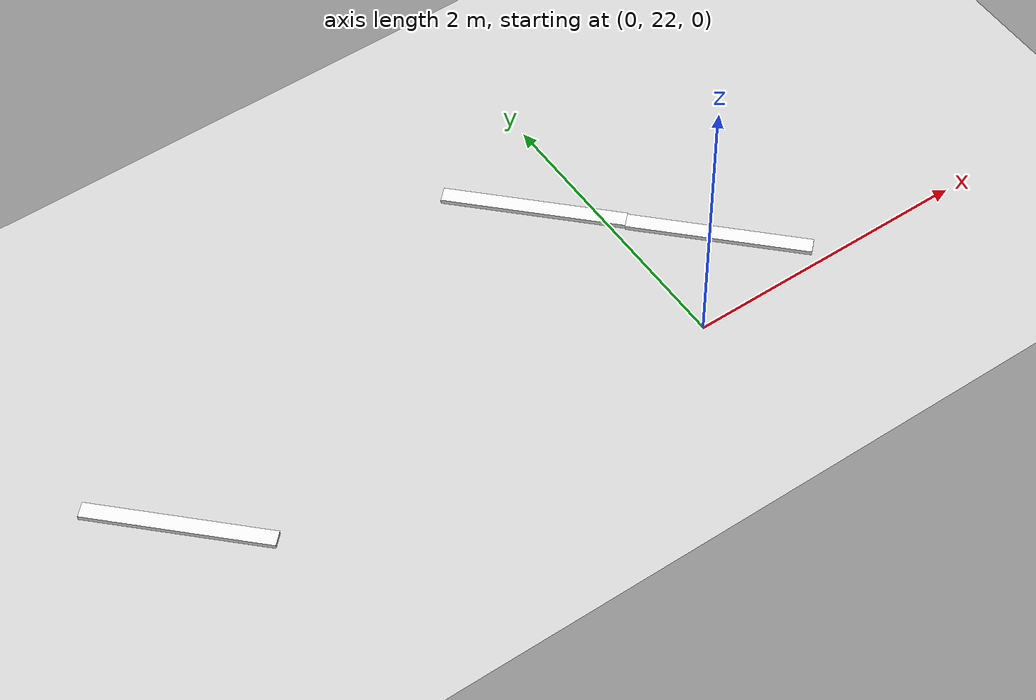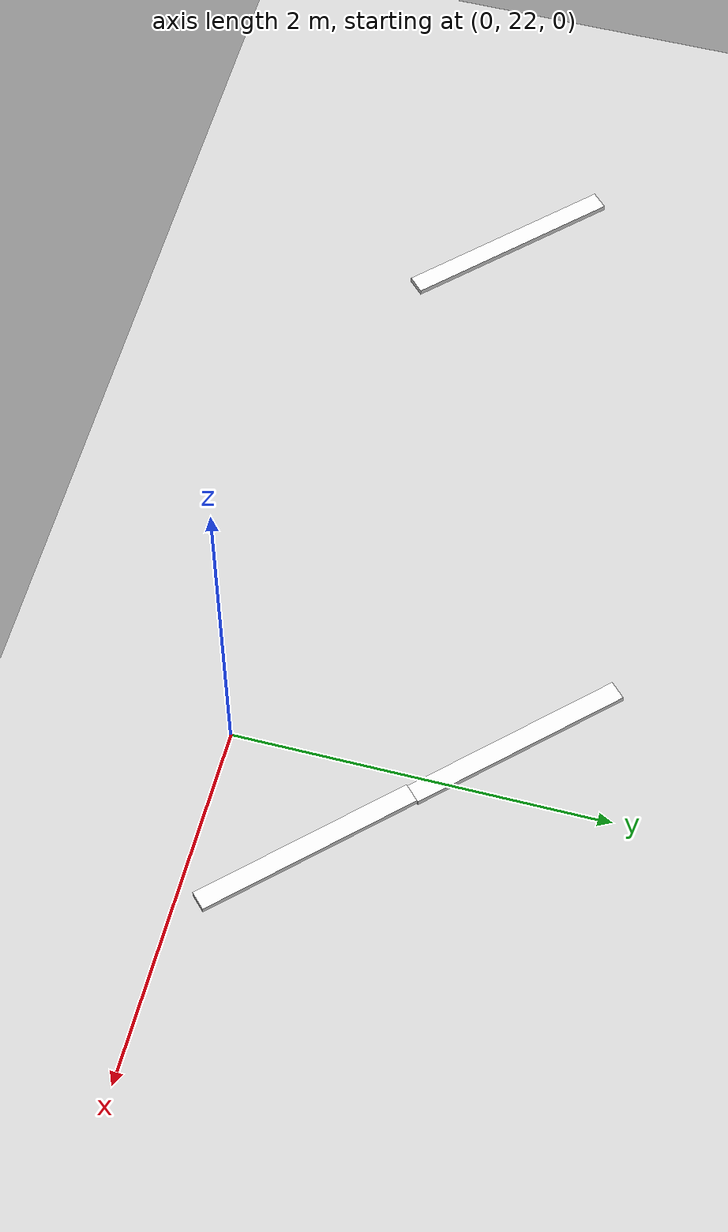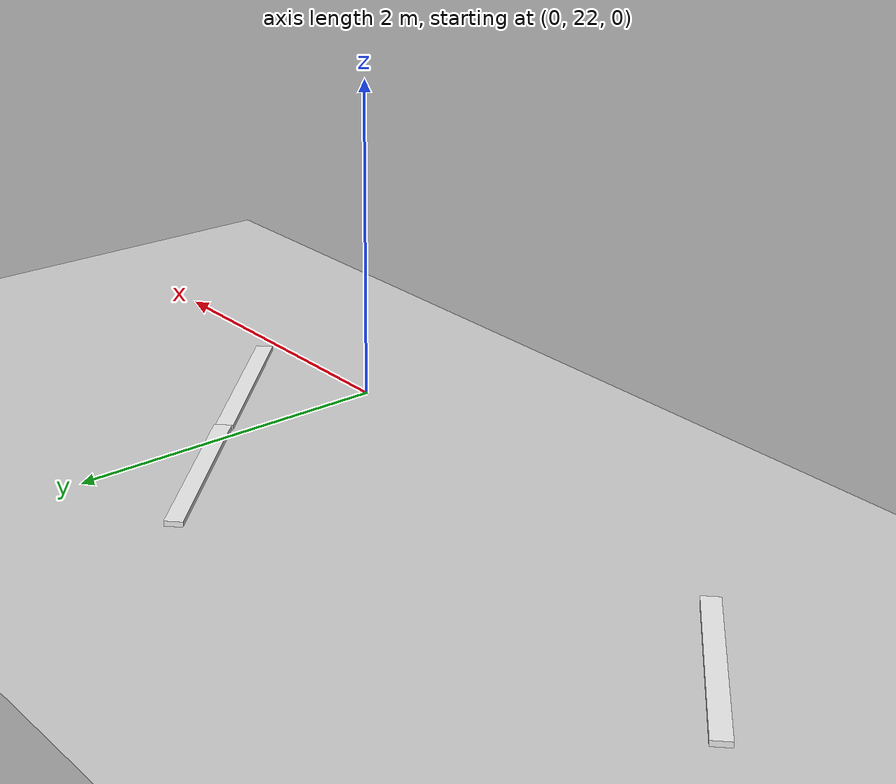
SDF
<sdf version="1.7">
 <world name="default">
  <model name="ground_plane">
   <static>1</static>
   <link name="link">
    <collision name="collision">
     <geometry><plane><normal>0 0 1</normal><size>100 100</size></plane></geometry>
     <surface><friction><ode><mu>100</mu><mu2>50</mu2></ode></friction></surface>
    </collision>
    <visual name="visual">
     <cast_shadows>0</cast_shadows>
     <geometry><plane><normal>0 0 1</normal><size>100 100</size></plane></geometry>
     <material>
      <script><uri>file://media/materials/scripts/gazebo.material</uri><name>Gazebo/Grey</name></script>
     </material>
    </visual>
   </link>
  </model>
  <model name="road_way_clone_clone">
   <link name="link">
    <inertial>
     <mass>1</mass>
     <inertia>
      <ixx>0.166667</ixx>
      <ixy>0</ixy>
      <ixz>0</ixz>
      <iyy>0.166667</iyy>
      <iyz>0</iyz>
      <izz>0.166667</izz>
     </inertia>
    </inertial>
    <visual name="visual">
     <geometry><box><size>0.106644 1.22348 0.03129</size></box></geometry>
     <material>
      <script><name>Gazebo/White</name><uri>file://media/materials/scripts/gazebo.material</uri></script>
      <shader type="pixel"><normal_map>__default__</normal_map></shader>
      <ambient>1 1 1 1</ambient>
      <diffuse>1 1 1 1</diffuse>
      <specular>0 0 0 1</specular>
      <emissive>0 0 0 1</emissive>
     </material>
    </visual>
    <collision name="collision">
     <geometry><box><size>0.10644 1.22348 0.03129</size></box></geometry>
     <surface>
      <friction>
       <ode><mu>1</mu><mu2>1</mu2><fdir1>0 0 0</fdir1><slip1>0</slip1><slip2>0</slip2></ode>
       <torsional>
        <coefficient>1</coefficient>
        <patch_radius>0</patch_radius>
        <surface_radius>0</surface_radius>
        <use_patch_radius>1</use_patch_radius>
        <ode><slip>0</slip></ode>
       </torsional>
      </friction>
      <bounce><restitution_coefficient>0</restitution_coefficient><threshold>1e+06</threshold></bounce>
      <contact>
       <collide_without_contact>0</collide_without_contact>
       <collide_without_contact_bitmask>1</collide_without_contact_bitmask>
       <collide_bitmask>1</collide_bitmask>
       <ode>
        <soft_cfm>0</soft_cfm>
        <soft_erp>0.2</soft_erp>
        <kp>1e+13</kp>
        <kd>1</kd>
        <max_vel>0.01</max_vel>
        <min_depth>0</min_depth>
       </ode>
       <bullet>
        <split_impulse>1</split_impulse>
        <split_impulse_penetration_threshold>-0.01</split_impulse_penetration_threshold>
        <soft_cfm>0</soft_cfm>
        <soft_erp>0.2</soft_erp>
        <kp>1e+13</kp>
        <kd>1</kd>
       </bullet>
      </contact>
     </surface>
    </collision>
   </link>
   <static>0</static>
   <pose>-3.48134 22.6105 0.015638 -1.1e-05 -0 0.786275</pose>
  </model>
  <model name="road_way_clone_clone_clone">
   <link name="link">
    <inertial>
     <mass>1</mass>
     <inertia>
      <ixx>0.166667</ixx>
      <ixy>0</ixy>
      <ixz>0</ixz>
      <iyy>0.166667</iyy>
      <iyz>0</iyz>
      <izz>0.166667</izz>
     </inertia>
    </inertial>
    <visual name="visual">
     <geometry><box><size>0.106644 1.22348 0.03129</size></box></geometry>
     <material>
      <script><name>Gazebo/White</name><uri>file://media/materials/scripts/gazebo.material</uri></script>
      <shader type="pixel"><normal_map>__default__</normal_map></shader>
      <ambient>1 1 1 1</ambient>
      <diffuse>1 1 1 1</diffuse>
      <specular>0 0 0 1</specular>
      <emissive>0 0 0 1</emissive>
     </material>
    </visual>
    <collision name="collision">
     <geometry><box><size>0.10644 1.22348 0.03129</size></box></geometry>
     <surface>
      <friction>
       <ode><mu>1</mu><mu2>1</mu2><fdir1>0 0 0</fdir1><slip1>0</slip1><slip2>0</slip2></ode>
       <torsional>
        <coefficient>1</coefficient>
        <patch_radius>0</patch_radius>
        <surface_radius>0</surface_radius>
        <use_patch_radius>1</use_patch_radius>
        <ode><slip>0</slip></ode>
       </torsional>
      </friction>
      <bounce><restitution_coefficient>0</restitution_coefficient><threshold>1e+06</threshold></bounce>
      <contact>
       <collide_without_contact>0</collide_without_contact>
       <collide_without_contact_bitmask>1</collide_without_contact_bitmask>
       <collide_bitmask>1</collide_bitmask>
       <ode>
        <soft_cfm>0</soft_cfm>
        <soft_erp>0.2</soft_erp>
        <kp>1e+13</kp>
        <kd>1</kd>
        <max_vel>0.01</max_vel>
        <min_depth>0</min_depth>
       </ode>
       <bullet>
        <split_impulse>1</split_impulse>
        <split_impulse_penetration_threshold>-0.01</split_impulse_penetration_threshold>
        <soft_cfm>0</soft_cfm>
        <soft_erp>0.2</soft_erp>
        <kp>1e+13</kp>
        <kd>1</kd>
       </bullet>
      </contact>
     </surface>
    </collision>
   </link>
   <static>0</static>
   <pose>0.537005 22.5481 0.015639 1e-05 -0 0.780648</pose>
  </model>
  <model name="road_way_clone_clone_clone_clone">
   <link name="link">
    <inertial>
     <mass>1</mass>
     <inertia>
      <ixx>0.166667</ixx>
      <ixy>0</ixy>
      <ixz>0</ixz>
      <iyy>0.166667</iyy>
      <iyz>0</iyz>
      <izz>0.166667</izz>
     </inertia>
    </inertial>
    <visual name="visual">
     <geometry><box><size>0.106644 1.22348 0.03129</size></box></geometry>
     <material>
      <script><name>Gazebo/White</name><uri>file://media/materials/scripts/gazebo.material</uri></script>
      <shader type="pixel"><normal_map>__default__</normal_map></shader>
      <ambient>1 1 1 1</ambient>
      <diffuse>1 1 1 1</diffuse>
      <specular>0 0 0 1</specular>
      <emissive>0 0 0 1</emissive>
     </material>
    </visual>
    <collision name="collision">
     <geometry><box><size>0.10644 1.22348 0.03129</size></box></geometry>
     <surface>
      <friction>
       <ode><mu>1</mu><mu2>1</mu2><fdir1>0 0 0</fdir1><slip1>0</slip1><slip2>0</slip2></ode>
       <torsional>
        <coefficient>1</coefficient>
        <patch_radius>0</patch_radius>
        <surface_radius>0</surface_radius>
        <use_patch_radius>1</use_patch_radius>
        <ode><slip>0</slip></ode>
       </torsional>
      </friction>
      <bounce><restitution_coefficient>0</restitution_coefficient><threshold>1e+06</threshold></bounce>
      <contact>
       <collide_without_contact>0</collide_without_contact>
       <collide_without_contact_bitmask>1</collide_without_contact_bitmask>
       <collide_bitmask>1</collide_bitmask>
       <ode>
        <soft_cfm>0</soft_cfm>
        <soft_erp>0.2</soft_erp>
        <kp>1e+13</kp>
        <kd>1</kd>
        <max_vel>0.01</max_vel>
        <min_depth>0</min_depth>
       </ode>
       <bullet>
        <split_impulse>1</split_impulse>
        <split_impulse_penetration_threshold>-0.01</split_impulse_penetration_threshold>
        <soft_cfm>0</soft_cfm>
        <soft_erp>0.2</soft_erp>
        <kp>1e+13</kp>
        <kd>1</kd>
       </bullet>
      </contact>
     </surface>
    </collision>
   </link>
   <static>0</static>
   <pose>-0.31789 23.4234 0.015639 1e-05 0 0.780671</pose>
  </model>
 </world>
</sdf>
